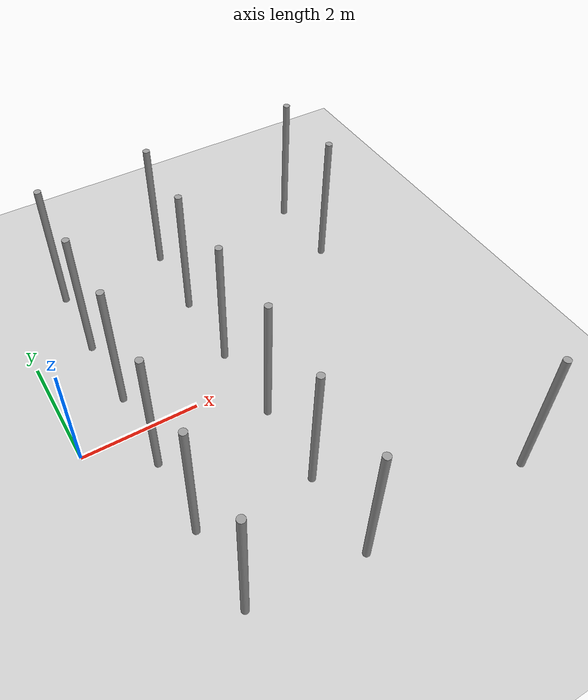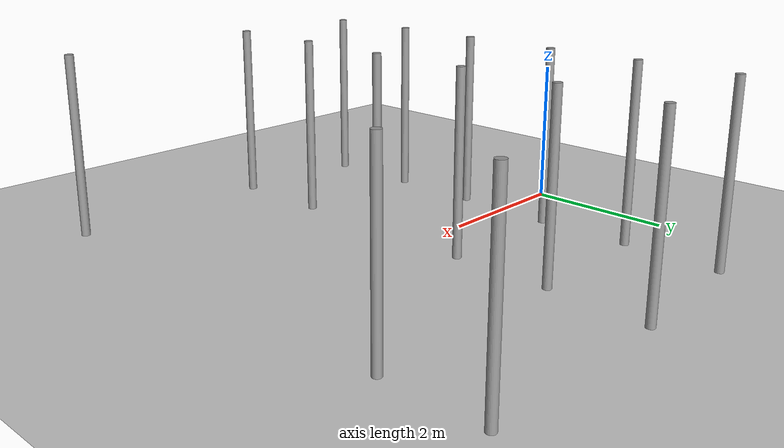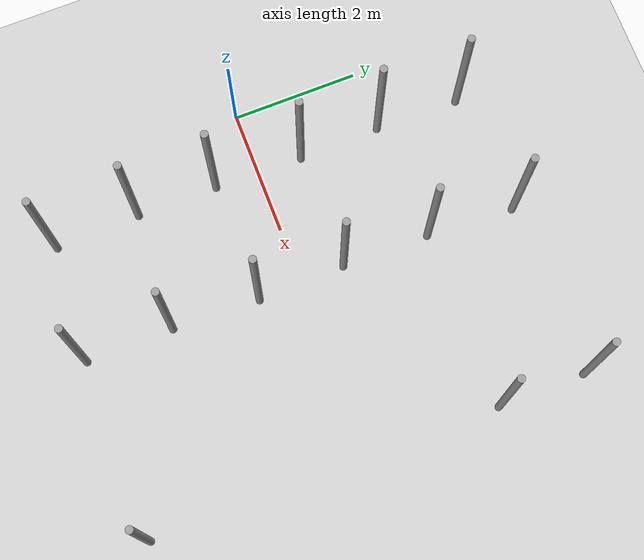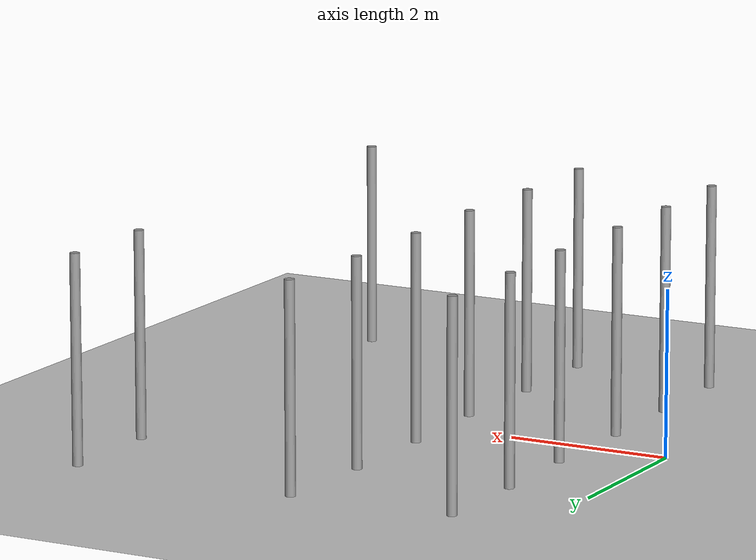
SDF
<sdf version="1.6">
 <world name="default">
  <model name="ground_plane">
   <static>1</static>
   <link name="link">
    <collision name="collision">
     <geometry><plane><normal>0 0 1</normal><size>100 100</size></plane></geometry>
     <surface><friction><ode><mu>100</mu><mu2>50</mu2></ode></friction></surface>
    </collision>
    <visual name="visual">
     <cast_shadows>0</cast_shadows>
     <geometry><plane><normal>0 0 1</normal><size>100 100</size></plane></geometry>
     <material>
      <script><uri>file://media/materials/scripts/gazebo.material</uri><name>Gazebo/Grey</name></script>
     </material>
    </visual>
   </link>
  </model>
  <model name="pole_9">
   <link name="link_0">
    <inertial>
     <mass>0.0364582</mass>
     <inertia>
      <ixx>0.00312124</ixx>
      <ixy>0</ixy>
      <ixz>0</ixz>
      <iyy>0.00312124</iyy>
      <iyz>0</iyz>
      <izz>0.00016615</izz>
     </inertia>
    </inertial>
    <visual name="visual">
     <geometry><cylinder><radius>0.06</radius><length>2.5</length></cylinder></geometry>
     <material>
      <lighting>1</lighting>
      <script><uri>file://media/materials/scripts/gazebo.material</uri><name>Gazebo/Grey</name></script>
      <ambient>0.3 0.3 0.3 1</ambient>
      <diffuse>0.7 0.7 0.7 1</diffuse>
      <specular>0.01 0.01 0.01 1</specular>
      <emissive>0 0 0 1</emissive>
      <shader type="vertex"><normal_map>__default__</normal_map></shader>
     </material>
    </visual>
    <collision name="collision">
     <geometry><cylinder><radius>0.06</radius><length>2.5</length></cylinder></geometry>
     <surface>
      <friction>
       <ode><mu>1</mu><mu2>1</mu2><fdir1>0 0 0</fdir1><slip1>0</slip1><slip2>0</slip2></ode>
       <torsional>
        <coefficient>1</coefficient>
        <patch_radius>0</patch_radius>
        <surface_radius>0</surface_radius>
        <use_patch_radius>1</use_patch_radius>
        <ode><slip>0</slip></ode>
       </torsional>
      </friction>
      <bounce><restitution_coefficient>0</restitution_coefficient><threshold>1e+06</threshold></bounce>
      <contact>
       <collide_without_contact>0</collide_without_contact>
       <collide_without_contact_bitmask>1</collide_without_contact_bitmask>
       <collide_bitmask>1</collide_bitmask>
       <ode>
        <soft_cfm>0</soft_cfm>
        <soft_erp>0.2</soft_erp>
        <kp>1e+13</kp>
        <kd>1</kd>
        <max_vel>0.01</max_vel>
        <min_depth>0</min_depth>
       </ode>
       <bullet>
        <split_impulse>1</split_impulse>
        <split_impulse_penetration_threshold>-0.01</split_impulse_penetration_threshold>
        <soft_cfm>0</soft_cfm>
        <soft_erp>0.2</soft_erp>
        <kp>1e+13</kp>
        <kd>1</kd>
       </bullet>
      </contact>
     </surface>
    </collision>
   </link>
   <static>0</static>
   <pose>2.90022 0.701706 1.24999 -1e-06 1e-06 -0.05086</pose>
  </model>
  <model name="pole_11">
   <link name="link_0">
    <inertial>
     <mass>0.0364582</mass>
     <inertia>
      <ixx>0.00312124</ixx>
      <ixy>0</ixy>
      <ixz>0</ixz>
      <iyy>0.00312124</iyy>
      <iyz>0</iyz>
      <izz>0.00016615</izz>
     </inertia>
    </inertial>
    <visual name="visual">
     <geometry><cylinder><radius>0.06</radius><length>2.5</length></cylinder></geometry>
     <material>
      <lighting>1</lighting>
      <script><uri>file://media/materials/scripts/gazebo.material</uri><name>Gazebo/Grey</name></script>
      <ambient>0.3 0.3 0.3 1</ambient>
      <diffuse>0.7 0.7 0.7 1</diffuse>
      <specular>0.01 0.01 0.01 1</specular>
      <emissive>0 0 0 1</emissive>
      <shader type="vertex"><normal_map>__default__</normal_map></shader>
     </material>
    </visual>
    <collision name="collision">
     <geometry><cylinder><radius>0.06</radius><length>2.5</length></cylinder></geometry>
     <surface>
      <friction>
       <ode><mu>1</mu><mu2>1</mu2><fdir1>0 0 0</fdir1><slip1>0</slip1><slip2>0</slip2></ode>
       <torsional>
        <coefficient>1</coefficient>
        <patch_radius>0</patch_radius>
        <surface_radius>0</surface_radius>
        <use_patch_radius>1</use_patch_radius>
        <ode><slip>0</slip></ode>
       </torsional>
      </friction>
      <bounce><restitution_coefficient>0</restitution_coefficient><threshold>1e+06</threshold></bounce>
      <contact>
       <collide_without_contact>0</collide_without_contact>
       <collide_without_contact_bitmask>1</collide_without_contact_bitmask>
       <collide_bitmask>1</collide_bitmask>
       <ode>
        <soft_cfm>0</soft_cfm>
        <soft_erp>0.2</soft_erp>
        <kp>1e+13</kp>
        <kd>1</kd>
        <max_vel>0.01</max_vel>
        <min_depth>0</min_depth>
       </ode>
       <bullet>
        <split_impulse>1</split_impulse>
        <split_impulse_penetration_threshold>-0.01</split_impulse_penetration_threshold>
        <soft_cfm>0</soft_cfm>
        <soft_erp>0.2</soft_erp>
        <kp>1e+13</kp>
        <kd>1</kd>
       </bullet>
      </contact>
     </surface>
    </collision>
   </link>
   <static>0</static>
   <pose>2.93709 -0.698355 1.25 0 1e-06 -0.036236</pose>
  </model>
  <model name="pole">
   <link name="link_0">
    <inertial>
     <mass>0.0364582</mass>
     <inertia>
      <ixx>0.00312124</ixx>
      <ixy>0</ixy>
      <ixz>0</ixz>
      <iyy>0.00312124</iyy>
      <iyz>0</iyz>
      <izz>0.00016615</izz>
     </inertia>
    </inertial>
    <visual name="visual">
     <geometry><cylinder><radius>0.06</radius><length>2.5</length></cylinder></geometry>
     <material>
      <lighting>1</lighting>
      <script><uri>file://media/materials/scripts/gazebo.material</uri><name>Gazebo/Grey</name></script>
      <ambient>0.3 0.3 0.3 1</ambient>
      <diffuse>0.7 0.7 0.7 1</diffuse>
      <specular>0.01 0.01 0.01 1</specular>
      <emissive>0 0 0 1</emissive>
      <shader type="vertex"><normal_map>__default__</normal_map></shader>
     </material>
    </visual>
    <collision name="collision">
     <geometry><cylinder><radius>0.06</radius><length>2.5</length></cylinder></geometry>
     <surface>
      <friction>
       <ode><mu>1</mu><mu2>1</mu2><fdir1>0 0 0</fdir1><slip1>0</slip1><slip2>0</slip2></ode>
       <torsional>
        <coefficient>1</coefficient>
        <patch_radius>0</patch_radius>
        <surface_radius>0</surface_radius>
        <use_patch_radius>1</use_patch_radius>
        <ode><slip>0</slip></ode>
       </torsional>
      </friction>
      <bounce><restitution_coefficient>0</restitution_coefficient><threshold>1e+06</threshold></bounce>
      <contact>
       <collide_without_contact>0</collide_without_contact>
       <collide_without_contact_bitmask>1</collide_without_contact_bitmask>
       <collide_bitmask>1</collide_bitmask>
       <ode>
        <soft_cfm>0</soft_cfm>
        <soft_erp>0.2</soft_erp>
        <kp>1e+13</kp>
        <kd>1</kd>
        <max_vel>0.01</max_vel>
        <min_depth>0</min_depth>
       </ode>
       <bullet>
        <split_impulse>1</split_impulse>
        <split_impulse_penetration_threshold>-0.01</split_impulse_penetration_threshold>
        <soft_cfm>0</soft_cfm>
        <soft_erp>0.2</soft_erp>
        <kp>1e+13</kp>
        <kd>1</kd>
       </bullet>
      </contact>
     </surface>
    </collision>
   </link>
   <static>0</static>
   <pose>2.90014 -3.49878 1.25 -2e-06 2e-06 -0.03106</pose>
  </model>
  <model name="pole_12">
   <link name="link_0">
    <inertial>
     <mass>0.0364582</mass>
     <inertia>
      <ixx>0.00312124</ixx>
      <ixy>0</ixy>
      <ixz>0</ixz>
      <iyy>0.00312124</iyy>
      <iyz>0</iyz>
      <izz>0.00016615</izz>
     </inertia>
    </inertial>
    <visual name="visual">
     <geometry><cylinder><radius>0.06</radius><length>2.5</length></cylinder></geometry>
     <material>
      <lighting>1</lighting>
      <script><uri>file://media/materials/scripts/gazebo.material</uri><name>Gazebo/Grey</name></script>
      <ambient>0.3 0.3 0.3 1</ambient>
      <diffuse>0.7 0.7 0.7 1</diffuse>
      <specular>0.01 0.01 0.01 1</specular>
      <emissive>0 0 0 1</emissive>
      <shader type="vertex"><normal_map>__default__</normal_map></shader>
     </material>
    </visual>
    <collision name="collision">
     <geometry><cylinder><radius>0.06</radius><length>2.5</length></cylinder></geometry>
     <surface>
      <friction>
       <ode><mu>1</mu><mu2>1</mu2><fdir1>0 0 0</fdir1><slip1>0</slip1><slip2>0</slip2></ode>
       <torsional>
        <coefficient>1</coefficient>
        <patch_radius>0</patch_radius>
        <surface_radius>0</surface_radius>
        <use_patch_radius>1</use_patch_radius>
        <ode><slip>0</slip></ode>
       </torsional>
      </friction>
      <bounce><restitution_coefficient>0</restitution_coefficient><threshold>1e+06</threshold></bounce>
      <contact>
       <collide_without_contact>0</collide_without_contact>
       <collide_without_contact_bitmask>1</collide_without_contact_bitmask>
       <collide_bitmask>1</collide_bitmask>
       <ode>
        <soft_cfm>0</soft_cfm>
        <soft_erp>0.2</soft_erp>
        <kp>1e+13</kp>
        <kd>1</kd>
        <max_vel>0.01</max_vel>
        <min_depth>0</min_depth>
       </ode>
       <bullet>
        <split_impulse>1</split_impulse>
        <split_impulse_penetration_threshold>-0.01</split_impulse_penetration_threshold>
        <soft_cfm>0</soft_cfm>
        <soft_erp>0.2</soft_erp>
        <kp>1e+13</kp>
        <kd>1</kd>
       </bullet>
      </contact>
     </surface>
    </collision>
   </link>
   <static>0</static>
   <pose>2.98888 3.50122 1.25 0 -1e-06 -0.031574</pose>
  </model>
  <model name="pole_13">
   <link name="link_0">
    <inertial>
     <mass>0.0364582</mass>
     <inertia>
      <ixx>0.00312124</ixx>
      <ixy>0</ixy>
      <ixz>0</ixz>
      <iyy>0.00312124</iyy>
      <iyz>0</iyz>
      <izz>0.00016615</izz>
     </inertia>
    </inertial>
    <visual name="visual">
     <geometry><cylinder><radius>0.06</radius><length>2.5</length></cylinder></geometry>
     <material>
      <lighting>1</lighting>
      <script><uri>file://media/materials/scripts/gazebo.material</uri><name>Gazebo/Grey</name></script>
      <ambient>0.3 0.3 0.3 1</ambient>
      <diffuse>0.7 0.7 0.7 1</diffuse>
      <specular>0.01 0.01 0.01 1</specular>
      <emissive>0 0 0 1</emissive>
      <shader type="vertex"><normal_map>__default__</normal_map></shader>
     </material>
    </visual>
    <collision name="collision">
     <geometry><cylinder><radius>0.06</radius><length>2.5</length></cylinder></geometry>
     <surface>
      <friction>
       <ode><mu>1</mu><mu2>1</mu2><fdir1>0 0 0</fdir1><slip1>0</slip1><slip2>0</slip2></ode>
       <torsional>
        <coefficient>1</coefficient>
        <patch_radius>0</patch_radius>
        <surface_radius>0</surface_radius>
        <use_patch_radius>1</use_patch_radius>
        <ode><slip>0</slip></ode>
       </torsional>
      </friction>
      <bounce><restitution_coefficient>0</restitution_coefficient><threshold>1e+06</threshold></bounce>
      <contact>
       <collide_without_contact>0</collide_without_contact>
       <collide_without_contact_bitmask>1</collide_without_contact_bitmask>
       <collide_bitmask>1</collide_bitmask>
       <ode>
        <soft_cfm>0</soft_cfm>
        <soft_erp>0.2</soft_erp>
        <kp>1e+13</kp>
        <kd>1</kd>
        <max_vel>0.01</max_vel>
        <min_depth>0</min_depth>
       </ode>
       <bullet>
        <split_impulse>1</split_impulse>
        <split_impulse_penetration_threshold>-0.01</split_impulse_penetration_threshold>
        <soft_cfm>0</soft_cfm>
        <soft_erp>0.2</soft_erp>
        <kp>1e+13</kp>
        <kd>1</kd>
       </bullet>
      </contact>
     </surface>
    </collision>
   </link>
   <static>0</static>
   <pose>2.88918 -2.09914 1.25 0 1e-06 -0.026081</pose>
  </model>
  <model name="pole_14">
   <link name="link_0">
    <inertial>
     <mass>0.0364582</mass>
     <inertia>
      <ixx>0.00312124</ixx>
      <ixy>0</ixy>
      <ixz>0</ixz>
      <iyy>0.00312124</iyy>
      <iyz>0</iyz>
      <izz>0.00016615</izz>
     </inertia>
    </inertial>
    <visual name="visual">
     <geometry><cylinder><radius>0.06</radius><length>2.5</length></cylinder></geometry>
     <material>
      <lighting>1</lighting>
      <script><uri>file://media/materials/scripts/gazebo.material</uri><name>Gazebo/Grey</name></script>
      <ambient>0.3 0.3 0.3 1</ambient>
      <diffuse>0.7 0.7 0.7 1</diffuse>
      <specular>0.01 0.01 0.01 1</specular>
      <emissive>0 0 0 1</emissive>
      <shader type="vertex"><normal_map>__default__</normal_map></shader>
     </material>
    </visual>
    <collision name="collision">
     <geometry><cylinder><radius>0.06</radius><length>2.5</length></cylinder></geometry>
     <surface>
      <friction>
       <ode><mu>1</mu><mu2>1</mu2><fdir1>0 0 0</fdir1><slip1>0</slip1><slip2>0</slip2></ode>
       <torsional>
        <coefficient>1</coefficient>
        <patch_radius>0</patch_radius>
        <surface_radius>0</surface_radius>
        <use_patch_radius>1</use_patch_radius>
        <ode><slip>0</slip></ode>
       </torsional>
      </friction>
      <bounce><restitution_coefficient>0</restitution_coefficient><threshold>1e+06</threshold></bounce>
      <contact>
       <collide_without_contact>0</collide_without_contact>
       <collide_without_contact_bitmask>1</collide_without_contact_bitmask>
       <collide_bitmask>1</collide_bitmask>
       <ode>
        <soft_cfm>0</soft_cfm>
        <soft_erp>0.2</soft_erp>
        <kp>1e+13</kp>
        <kd>1</kd>
        <max_vel>0.01</max_vel>
        <min_depth>0</min_depth>
       </ode>
       <bullet>
        <split_impulse>1</split_impulse>
        <split_impulse_penetration_threshold>-0.01</split_impulse_penetration_threshold>
        <soft_cfm>0</soft_cfm>
        <soft_erp>0.2</soft_erp>
        <kp>1e+13</kp>
        <kd>1</kd>
       </bullet>
      </contact>
     </surface>
    </collision>
   </link>
   <static>0</static>
   <pose>2.911 2.10118 1.25 -1e-06 -0 -0.028633</pose>
  </model>
  <model name="pole_16">
   <link name="link_0">
    <inertial>
     <mass>0.0364582</mass>
     <inertia>
      <ixx>0.00312124</ixx>
      <ixy>0</ixy>
      <ixz>0</ixz>
      <iyy>0.00312124</iyy>
      <iyz>0</iyz>
      <izz>0.00016615</izz>
     </inertia>
    </inertial>
    <visual name="visual">
     <geometry><cylinder><radius>0.06</radius><length>2.5</length></cylinder></geometry>
     <material>
      <lighting>1</lighting>
      <script><uri>file://media/materials/scripts/gazebo.material</uri><name>Gazebo/Grey</name></script>
      <ambient>0.3 0.3 0.3 1</ambient>
      <diffuse>0.7 0.7 0.7 1</diffuse>
      <specular>0.01 0.01 0.01 1</specular>
      <emissive>0 0 0 1</emissive>
      <shader type="vertex"><normal_map>__default__</normal_map></shader>
     </material>
    </visual>
    <collision name="collision">
     <geometry><cylinder><radius>0.06</radius><length>2.5</length></cylinder></geometry>
     <surface>
      <friction>
       <ode><mu>1</mu><mu2>1</mu2><fdir1>0 0 0</fdir1><slip1>0</slip1><slip2>0</slip2></ode>
       <torsional>
        <coefficient>1</coefficient>
        <patch_radius>0</patch_radius>
        <surface_radius>0</surface_radius>
        <use_patch_radius>1</use_patch_radius>
        <ode><slip>0</slip></ode>
       </torsional>
      </friction>
      <bounce><restitution_coefficient>0</restitution_coefficient><threshold>1e+06</threshold></bounce>
      <contact>
       <collide_without_contact>0</collide_without_contact>
       <collide_without_contact_bitmask>1</collide_without_contact_bitmask>
       <collide_bitmask>1</collide_bitmask>
       <ode>
        <soft_cfm>0</soft_cfm>
        <soft_erp>0.2</soft_erp>
        <kp>1e+13</kp>
        <kd>1</kd>
        <max_vel>0.01</max_vel>
        <min_depth>0</min_depth>
       </ode>
       <bullet>
        <split_impulse>1</split_impulse>
        <split_impulse_penetration_threshold>-0.01</split_impulse_penetration_threshold>
        <soft_cfm>0</soft_cfm>
        <soft_erp>0.2</soft_erp>
        <kp>1e+13</kp>
        <kd>1</kd>
       </bullet>
      </contact>
     </surface>
    </collision>
   </link>
   <static>0</static>
   <pose>5.8001 -3.49913 1.24999 -1e-06 1e-06 -0.029763</pose>
  </model>
  <model name="pole_18">
   <link name="link_0">
    <inertial>
     <mass>0.0364582</mass>
     <inertia>
      <ixx>0.00312124</ixx>
      <ixy>0</ixy>
      <ixz>0</ixz>
      <iyy>0.00312124</iyy>
      <iyz>0</iyz>
      <izz>0.00016615</izz>
     </inertia>
    </inertial>
    <visual name="visual">
     <geometry><cylinder><radius>0.06</radius><length>2.5</length></cylinder></geometry>
     <material>
      <lighting>1</lighting>
      <script><uri>file://media/materials/scripts/gazebo.material</uri><name>Gazebo/Grey</name></script>
      <ambient>0.3 0.3 0.3 1</ambient>
      <diffuse>0.7 0.7 0.7 1</diffuse>
      <specular>0.01 0.01 0.01 1</specular>
      <emissive>0 0 0 1</emissive>
      <shader type="vertex"><normal_map>__default__</normal_map></shader>
     </material>
    </visual>
    <collision name="collision">
     <geometry><cylinder><radius>0.06</radius><length>2.5</length></cylinder></geometry>
     <surface>
      <friction>
       <ode><mu>1</mu><mu2>1</mu2><fdir1>0 0 0</fdir1><slip1>0</slip1><slip2>0</slip2></ode>
       <torsional>
        <coefficient>1</coefficient>
        <patch_radius>0</patch_radius>
        <surface_radius>0</surface_radius>
        <use_patch_radius>1</use_patch_radius>
        <ode><slip>0</slip></ode>
       </torsional>
      </friction>
      <bounce><restitution_coefficient>0</restitution_coefficient><threshold>1e+06</threshold></bounce>
      <contact>
       <collide_without_contact>0</collide_without_contact>
       <collide_without_contact_bitmask>1</collide_without_contact_bitmask>
       <collide_bitmask>1</collide_bitmask>
       <ode>
        <soft_cfm>0</soft_cfm>
        <soft_erp>0.2</soft_erp>
        <kp>1e+13</kp>
        <kd>1</kd>
        <max_vel>0.01</max_vel>
        <min_depth>0</min_depth>
       </ode>
       <bullet>
        <split_impulse>1</split_impulse>
        <split_impulse_penetration_threshold>-0.01</split_impulse_penetration_threshold>
        <soft_cfm>0</soft_cfm>
        <soft_erp>0.2</soft_erp>
        <kp>1e+13</kp>
        <kd>1</kd>
       </bullet>
      </contact>
     </surface>
    </collision>
   </link>
   <static>0</static>
   <pose>5.8001 2.10085 1.25 -1e-06 -1e-06 -0.027141</pose>
  </model>
  <model name="pole_19">
   <link name="link_0">
    <inertial>
     <mass>0.0364582</mass>
     <inertia>
      <ixx>0.00312124</ixx>
      <ixy>0</ixy>
      <ixz>0</ixz>
      <iyy>0.00312124</iyy>
      <iyz>0</iyz>
      <izz>0.00016615</izz>
     </inertia>
    </inertial>
    <visual name="visual">
     <geometry><cylinder><radius>0.06</radius><length>2.5</length></cylinder></geometry>
     <material>
      <lighting>1</lighting>
      <script><uri>file://media/materials/scripts/gazebo.material</uri><name>Gazebo/Grey</name></script>
      <ambient>0.3 0.3 0.3 1</ambient>
      <diffuse>0.7 0.7 0.7 1</diffuse>
      <specular>0.01 0.01 0.01 1</specular>
      <emissive>0 0 0 1</emissive>
      <shader type="vertex"><normal_map>__default__</normal_map></shader>
     </material>
    </visual>
    <collision name="collision">
     <geometry><cylinder><radius>0.06</radius><length>2.5</length></cylinder></geometry>
     <surface>
      <friction>
       <ode><mu>1</mu><mu2>1</mu2><fdir1>0 0 0</fdir1><slip1>0</slip1><slip2>0</slip2></ode>
       <torsional>
        <coefficient>1</coefficient>
        <patch_radius>0</patch_radius>
        <surface_radius>0</surface_radius>
        <use_patch_radius>1</use_patch_radius>
        <ode><slip>0</slip></ode>
       </torsional>
      </friction>
      <bounce><restitution_coefficient>0</restitution_coefficient><threshold>1e+06</threshold></bounce>
      <contact>
       <collide_without_contact>0</collide_without_contact>
       <collide_without_contact_bitmask>1</collide_without_contact_bitmask>
       <collide_bitmask>1</collide_bitmask>
       <ode>
        <soft_cfm>0</soft_cfm>
        <soft_erp>0.2</soft_erp>
        <kp>1e+13</kp>
        <kd>1</kd>
        <max_vel>0.01</max_vel>
        <min_depth>0</min_depth>
       </ode>
       <bullet>
        <split_impulse>1</split_impulse>
        <split_impulse_penetration_threshold>-0.01</split_impulse_penetration_threshold>
        <soft_cfm>0</soft_cfm>
        <soft_erp>0.2</soft_erp>
        <kp>1e+13</kp>
        <kd>1</kd>
       </bullet>
      </contact>
     </surface>
    </collision>
   </link>
   <static>0</static>
   <pose>5.80013 3.50095 1.24999 -0 1e-06 -0.025201</pose>
  </model>
  <model name="pole_9_clone">
   <link name="link_0">
    <inertial>
     <mass>0.0364582</mass>
     <inertia>
      <ixx>0.00312124</ixx>
      <ixy>0</ixy>
      <ixz>0</ixz>
      <iyy>0.00312124</iyy>
      <iyz>0</iyz>
      <izz>0.00016615</izz>
     </inertia>
    </inertial>
    <visual name="visual">
     <geometry><cylinder><radius>0.06</radius><length>2.5</length></cylinder></geometry>
     <material>
      <lighting>1</lighting>
      <script><uri>file://media/materials/scripts/gazebo.material</uri><name>Gazebo/Grey</name></script>
      <ambient>0.3 0.3 0.3 1</ambient>
      <diffuse>0.7 0.7 0.7 1</diffuse>
      <specular>0.01 0.01 0.01 1</specular>
      <emissive>0 0 0 1</emissive>
      <shader type="vertex"><normal_map>__default__</normal_map></shader>
     </material>
    </visual>
    <collision name="collision">
     <geometry><cylinder><radius>0.06</radius><length>2.5</length></cylinder></geometry>
     <surface>
      <friction>
       <ode><mu>1</mu><mu2>1</mu2><fdir1>0 0 0</fdir1><slip1>0</slip1><slip2>0</slip2></ode>
       <torsional>
        <coefficient>1</coefficient>
        <patch_radius>0</patch_radius>
        <surface_radius>0</surface_radius>
        <use_patch_radius>1</use_patch_radius>
        <ode><slip>0</slip></ode>
       </torsional>
      </friction>
      <bounce><restitution_coefficient>0</restitution_coefficient><threshold>1e+06</threshold></bounce>
      <contact>
       <collide_without_contact>0</collide_without_contact>
       <collide_without_contact_bitmask>1</collide_without_contact_bitmask>
       <collide_bitmask>1</collide_bitmask>
       <ode>
        <soft_cfm>0</soft_cfm>
        <soft_erp>0.2</soft_erp>
        <kp>1e+13</kp>
        <kd>1</kd>
        <max_vel>0.01</max_vel>
        <min_depth>0</min_depth>
       </ode>
       <bullet>
        <split_impulse>1</split_impulse>
        <split_impulse_penetration_threshold>-0.01</split_impulse_penetration_threshold>
        <soft_cfm>0</soft_cfm>
        <soft_erp>0.2</soft_erp>
        <kp>1e+13</kp>
        <kd>1</kd>
       </bullet>
      </contact>
     </surface>
    </collision>
   </link>
   <static>0</static>
   <pose>1.01821 0.719669 1.25 0 -3e-06 -0.053064</pose>
  </model>
  <model name="pole_9_clone_clone">
   <link name="link_0">
    <inertial>
     <mass>0.0364582</mass>
     <inertia>
      <ixx>0.00312124</ixx>
      <ixy>0</ixy>
      <ixz>0</ixz>
      <iyy>0.00312124</iyy>
      <iyz>0</iyz>
      <izz>0.00016615</izz>
     </inertia>
    </inertial>
    <visual name="visual">
     <geometry><cylinder><radius>0.06</radius><length>2.5</length></cylinder></geometry>
     <material>
      <lighting>1</lighting>
      <script><uri>file://media/materials/scripts/gazebo.material</uri><name>Gazebo/Grey</name></script>
      <ambient>0.3 0.3 0.3 1</ambient>
      <diffuse>0.7 0.7 0.7 1</diffuse>
      <specular>0.01 0.01 0.01 1</specular>
      <emissive>0 0 0 1</emissive>
      <shader type="vertex"><normal_map>__default__</normal_map></shader>
     </material>
    </visual>
    <collision name="collision">
     <geometry><cylinder><radius>0.06</radius><length>2.5</length></cylinder></geometry>
     <surface>
      <friction>
       <ode><mu>1</mu><mu2>1</mu2><fdir1>0 0 0</fdir1><slip1>0</slip1><slip2>0</slip2></ode>
       <torsional>
        <coefficient>1</coefficient>
        <patch_radius>0</patch_radius>
        <surface_radius>0</surface_radius>
        <use_patch_radius>1</use_patch_radius>
        <ode><slip>0</slip></ode>
       </torsional>
      </friction>
      <bounce><restitution_coefficient>0</restitution_coefficient><threshold>1e+06</threshold></bounce>
      <contact>
       <collide_without_contact>0</collide_without_contact>
       <collide_without_contact_bitmask>1</collide_without_contact_bitmask>
       <collide_bitmask>1</collide_bitmask>
       <ode>
        <soft_cfm>0</soft_cfm>
        <soft_erp>0.2</soft_erp>
        <kp>1e+13</kp>
        <kd>1</kd>
        <max_vel>0.01</max_vel>
        <min_depth>0</min_depth>
       </ode>
       <bullet>
        <split_impulse>1</split_impulse>
        <split_impulse_penetration_threshold>-0.01</split_impulse_penetration_threshold>
        <soft_cfm>0</soft_cfm>
        <soft_erp>0.2</soft_erp>
        <kp>1e+13</kp>
        <kd>1</kd>
       </bullet>
      </contact>
     </surface>
    </collision>
   </link>
   <static>0</static>
   <pose>0.988446 2.01966 1.25 -1e-06 -1e-06 -0.052961</pose>
  </model>
  <model name="pole_9_clone_clone_clone">
   <link name="link_0">
    <inertial>
     <mass>0.0364582</mass>
     <inertia>
      <ixx>0.00312124</ixx>
      <ixy>0</ixy>
      <ixz>0</ixz>
      <iyy>0.00312124</iyy>
      <iyz>0</iyz>
      <izz>0.00016615</izz>
     </inertia>
    </inertial>
    <visual name="visual">
     <geometry><cylinder><radius>0.06</radius><length>2.5</length></cylinder></geometry>
     <material>
      <lighting>1</lighting>
      <script><uri>file://media/materials/scripts/gazebo.material</uri><name>Gazebo/Grey</name></script>
      <ambient>0.3 0.3 0.3 1</ambient>
      <diffuse>0.7 0.7 0.7 1</diffuse>
      <specular>0.01 0.01 0.01 1</specular>
      <emissive>0 0 0 1</emissive>
      <shader type="vertex"><normal_map>__default__</normal_map></shader>
     </material>
    </visual>
    <collision name="collision">
     <geometry><cylinder><radius>0.06</radius><length>2.5</length></cylinder></geometry>
     <surface>
      <friction>
       <ode><mu>1</mu><mu2>1</mu2><fdir1>0 0 0</fdir1><slip1>0</slip1><slip2>0</slip2></ode>
       <torsional>
        <coefficient>1</coefficient>
        <patch_radius>0</patch_radius>
        <surface_radius>0</surface_radius>
        <use_patch_radius>1</use_patch_radius>
        <ode><slip>0</slip></ode>
       </torsional>
      </friction>
      <bounce><restitution_coefficient>0</restitution_coefficient><threshold>1e+06</threshold></bounce>
      <contact>
       <collide_without_contact>0</collide_without_contact>
       <collide_without_contact_bitmask>1</collide_without_contact_bitmask>
       <collide_bitmask>1</collide_bitmask>
       <ode>
        <soft_cfm>0</soft_cfm>
        <soft_erp>0.2</soft_erp>
        <kp>1e+13</kp>
        <kd>1</kd>
        <max_vel>0.01</max_vel>
        <min_depth>0</min_depth>
       </ode>
       <bullet>
        <split_impulse>1</split_impulse>
        <split_impulse_penetration_threshold>-0.01</split_impulse_penetration_threshold>
        <soft_cfm>0</soft_cfm>
        <soft_erp>0.2</soft_erp>
        <kp>1e+13</kp>
        <kd>1</kd>
       </bullet>
      </contact>
     </surface>
    </collision>
   </link>
   <static>0</static>
   <pose>1.01096 3.35922 1.25 -1e-06 2e-06 -0.052861</pose>
  </model>
  <model name="pole_9_clone_clone_clone_0">
   <link name="link_0">
    <inertial>
     <mass>0.0364582</mass>
     <inertia>
      <ixx>0.00312124</ixx>
      <ixy>0</ixy>
      <ixz>0</ixz>
      <iyy>0.00312124</iyy>
      <iyz>0</iyz>
      <izz>0.00016615</izz>
     </inertia>
    </inertial>
    <visual name="visual">
     <geometry><cylinder><radius>0.06</radius><length>2.5</length></cylinder></geometry>
     <material>
      <lighting>1</lighting>
      <script><uri>file://media/materials/scripts/gazebo.material</uri><name>Gazebo/Grey</name></script>
      <ambient>0.3 0.3 0.3 1</ambient>
      <diffuse>0.7 0.7 0.7 1</diffuse>
      <specular>0.01 0.01 0.01 1</specular>
      <emissive>0 0 0 1</emissive>
      <shader type="vertex"><normal_map>__default__</normal_map></shader>
     </material>
    </visual>
    <collision name="collision">
     <geometry><cylinder><radius>0.06</radius><length>2.5</length></cylinder></geometry>
     <surface>
      <friction>
       <ode><mu>1</mu><mu2>1</mu2><fdir1>0 0 0</fdir1><slip1>0</slip1><slip2>0</slip2></ode>
       <torsional>
        <coefficient>1</coefficient>
        <patch_radius>0</patch_radius>
        <surface_radius>0</surface_radius>
        <use_patch_radius>1</use_patch_radius>
        <ode><slip>0</slip></ode>
       </torsional>
      </friction>
      <bounce><restitution_coefficient>0</restitution_coefficient><threshold>1e+06</threshold></bounce>
      <contact>
       <collide_without_contact>0</collide_without_contact>
       <collide_without_contact_bitmask>1</collide_without_contact_bitmask>
       <collide_bitmask>1</collide_bitmask>
       <ode>
        <soft_cfm>0</soft_cfm>
        <soft_erp>0.2</soft_erp>
        <kp>1e+13</kp>
        <kd>1</kd>
        <max_vel>0.01</max_vel>
        <min_depth>0</min_depth>
       </ode>
       <bullet>
        <split_impulse>1</split_impulse>
        <split_impulse_penetration_threshold>-0.01</split_impulse_penetration_threshold>
        <soft_cfm>0</soft_cfm>
        <soft_erp>0.2</soft_erp>
        <kp>1e+13</kp>
        <kd>1</kd>
       </bullet>
      </contact>
     </surface>
    </collision>
   </link>
   <static>0</static>
   <pose>0.989193 -0.696092 1.25 0 2e-06 -0.052461</pose>
  </model>
  <model name="pole_9_clone_clone_clone_1">
   <link name="link_0">
    <inertial>
     <mass>0.0364582</mass>
     <inertia>
      <ixx>0.00312124</ixx>
      <ixy>0</ixy>
      <ixz>0</ixz>
      <iyy>0.00312124</iyy>
      <iyz>0</iyz>
      <izz>0.00016615</izz>
     </inertia>
    </inertial>
    <visual name="visual">
     <geometry><cylinder><radius>0.06</radius><length>2.5</length></cylinder></geometry>
     <material>
      <lighting>1</lighting>
      <script><uri>file://media/materials/scripts/gazebo.material</uri><name>Gazebo/Grey</name></script>
      <ambient>0.3 0.3 0.3 1</ambient>
      <diffuse>0.7 0.7 0.7 1</diffuse>
      <specular>0.01 0.01 0.01 1</specular>
      <emissive>0 0 0 1</emissive>
      <shader type="vertex"><normal_map>__default__</normal_map></shader>
     </material>
    </visual>
    <collision name="collision">
     <geometry><cylinder><radius>0.06</radius><length>2.5</length></cylinder></geometry>
     <surface>
      <friction>
       <ode><mu>1</mu><mu2>1</mu2><fdir1>0 0 0</fdir1><slip1>0</slip1><slip2>0</slip2></ode>
       <torsional>
        <coefficient>1</coefficient>
        <patch_radius>0</patch_radius>
        <surface_radius>0</surface_radius>
        <use_patch_radius>1</use_patch_radius>
        <ode><slip>0</slip></ode>
       </torsional>
      </friction>
      <bounce><restitution_coefficient>0</restitution_coefficient><threshold>1e+06</threshold></bounce>
      <contact>
       <collide_without_contact>0</collide_without_contact>
       <collide_without_contact_bitmask>1</collide_without_contact_bitmask>
       <collide_bitmask>1</collide_bitmask>
       <ode>
        <soft_cfm>0</soft_cfm>
        <soft_erp>0.2</soft_erp>
        <kp>1e+13</kp>
        <kd>1</kd>
        <max_vel>0.01</max_vel>
        <min_depth>0</min_depth>
       </ode>
       <bullet>
        <split_impulse>1</split_impulse>
        <split_impulse_penetration_threshold>-0.01</split_impulse_penetration_threshold>
        <soft_cfm>0</soft_cfm>
        <soft_erp>0.2</soft_erp>
        <kp>1e+13</kp>
        <kd>1</kd>
       </bullet>
      </contact>
     </surface>
    </collision>
   </link>
   <static>0</static>
   <pose>0.987254 -1.98727 1.24999 -1e-06 1e-06 -0.052936</pose>
  </model>
  <model name="pole_9_clone_clone_clone_2">
   <link name="link_0">
    <inertial>
     <mass>0.0364582</mass>
     <inertia>
      <ixx>0.00312124</ixx>
      <ixy>0</ixy>
      <ixz>0</ixz>
      <iyy>0.00312124</iyy>
      <iyz>0</iyz>
      <izz>0.00016615</izz>
     </inertia>
    </inertial>
    <visual name="visual">
     <geometry><cylinder><radius>0.06</radius><length>2.5</length></cylinder></geometry>
     <material>
      <lighting>1</lighting>
      <script><uri>file://media/materials/scripts/gazebo.material</uri><name>Gazebo/Grey</name></script>
      <ambient>0.3 0.3 0.3 1</ambient>
      <diffuse>0.7 0.7 0.7 1</diffuse>
      <specular>0.01 0.01 0.01 1</specular>
      <emissive>0 0 0 1</emissive>
      <shader type="vertex"><normal_map>__default__</normal_map></shader>
     </material>
    </visual>
    <collision name="collision">
     <geometry><cylinder><radius>0.06</radius><length>2.5</length></cylinder></geometry>
     <surface>
      <friction>
       <ode><mu>1</mu><mu2>1</mu2><fdir1>0 0 0</fdir1><slip1>0</slip1><slip2>0</slip2></ode>
       <torsional>
        <coefficient>1</coefficient>
        <patch_radius>0</patch_radius>
        <surface_radius>0</surface_radius>
        <use_patch_radius>1</use_patch_radius>
        <ode><slip>0</slip></ode>
       </torsional>
      </friction>
      <bounce><restitution_coefficient>0</restitution_coefficient><threshold>1e+06</threshold></bounce>
      <contact>
       <collide_without_contact>0</collide_without_contact>
       <collide_without_contact_bitmask>1</collide_without_contact_bitmask>
       <collide_bitmask>1</collide_bitmask>
       <ode>
        <soft_cfm>0</soft_cfm>
        <soft_erp>0.2</soft_erp>
        <kp>1e+13</kp>
        <kd>1</kd>
        <max_vel>0.01</max_vel>
        <min_depth>0</min_depth>
       </ode>
       <bullet>
        <split_impulse>1</split_impulse>
        <split_impulse_penetration_threshold>-0.01</split_impulse_penetration_threshold>
        <soft_cfm>0</soft_cfm>
        <soft_erp>0.2</soft_erp>
        <kp>1e+13</kp>
        <kd>1</kd>
       </bullet>
      </contact>
     </surface>
    </collision>
   </link>
   <static>0</static>
   <pose>1.02968 -3.34361 1.24999 -0 1e-06 -0.05264</pose>
  </model>
 </world>
</sdf>
